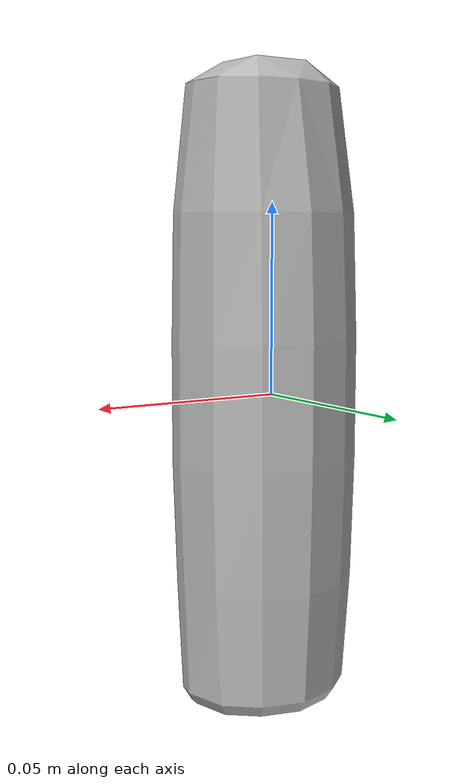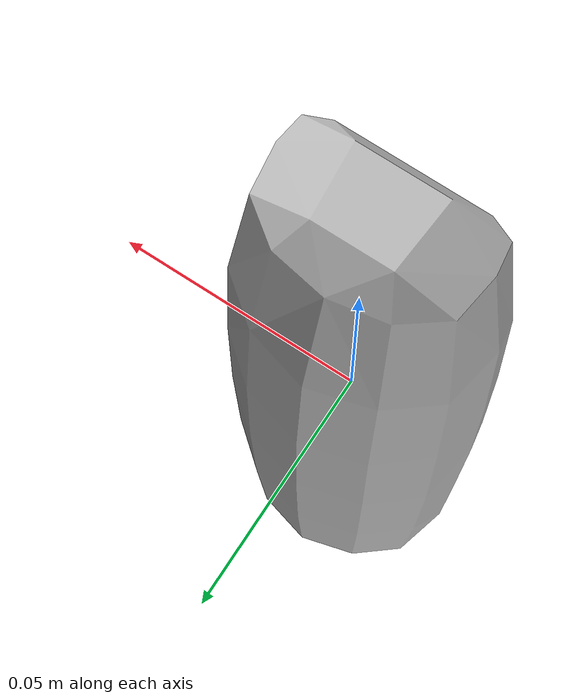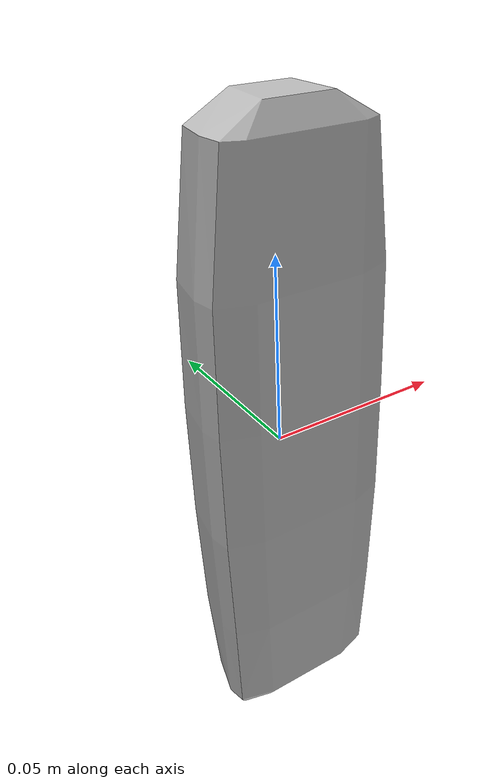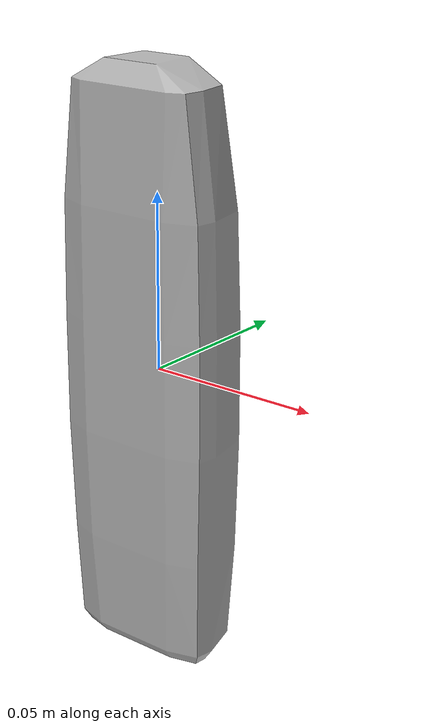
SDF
<?xml version='1.0'?>
<sdf version="1.4">
	<model name="phone1">
		<static>1</static>
		<link name="link">
			<visual name="mesh">
				<geometry>
					<mesh>
						<uri>model://meshes/phone1.dae</uri>
					</mesh>
				</geometry>
			</visual>
			<collision name="collider">
				<pose>0 0 0.0 0 0 0</pose>
				<geometry>
					<box>
						<size>0.049 0.033 0.168</size>
					</box>
				</geometry>
			</collision>
		</link>
	</model>
</sdf>
